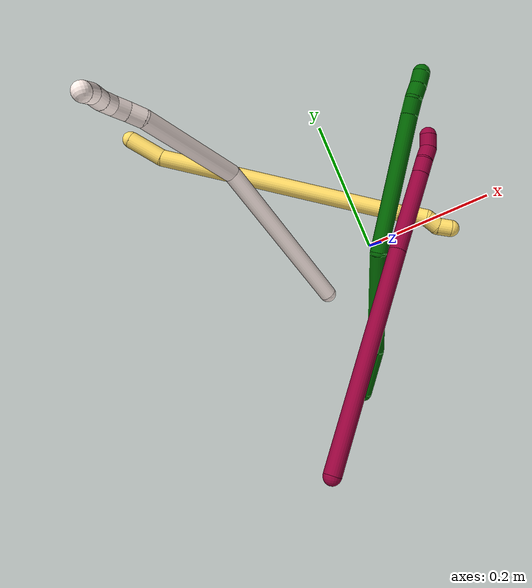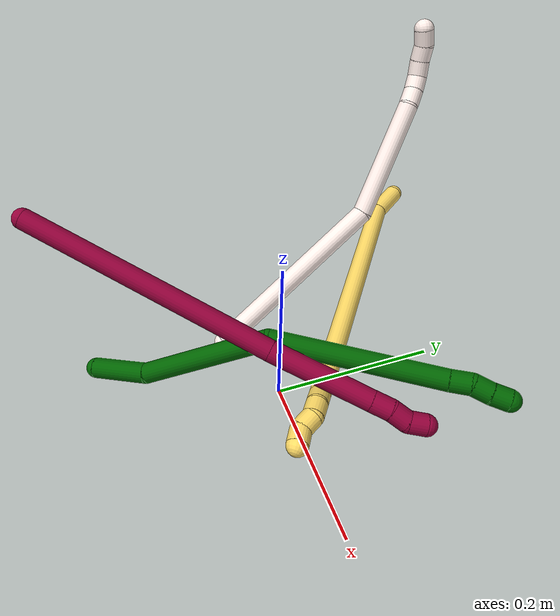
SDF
<sdf version="1.7">
 <world name="default">
  <model name="5">
   <static>0</static>
   <link name="5">
    <collision name="collision-cylinder-e_1_1_4">
     <pose>0.002869 -0.010849 -0.024515 2.72496 0.106606 0.494481</pose>
     <geometry><cylinder><radius>0.0125</radius><length>0.053923</length></cylinder></geometry>
     <surface>
      <friction><ode><mu>1.16</mu><mu2>1.16</mu2><slip1>0</slip1><slip2>0</slip2></ode></friction>
      <contact><ode><kp>1e+06</kp><kd>1</kd><max_vel>0</max_vel><min_depth>0.001</min_depth></ode></contact>
     </surface>
    </collision>
    <visual name="visual-cylinder-e_1_1_4">
     <pose>0.002869 -0.010849 -0.024515 2.72496 0.106606 0.494481</pose>
     <geometry><cylinder><radius>0.0125</radius><length>0.053923</length></cylinder></geometry>
     <material><ambient>1 0.858824 0.4 1</ambient></material>
    </visual>
    <collision name="collision-cylinder-e_2_4_5">
     <pose>0.056662 -0.052415 -0.207655 2.95032 0.305327 2.02656</pose>
     <geometry><cylinder><radius>0.0125</radius><length>0.338814</length></cylinder></geometry>
     <surface>
      <friction><ode><mu>1.16</mu><mu2>1.16</mu2><slip1>0</slip1><slip2>0</slip2></ode></friction>
      <contact><ode><kp>1e+06</kp><kd>1</kd><max_vel>0</max_vel><min_depth>0.001</min_depth></ode></contact>
     </surface>
    </collision>
    <visual name="visual-cylinder-e_2_4_5">
     <pose>0.056662 -0.052415 -0.207655 2.95032 0.305327 2.02656</pose>
     <geometry><cylinder><radius>0.0125</radius><length>0.338814</length></cylinder></geometry>
     <material><ambient>1 0.858824 0.4 1</ambient></material>
    </visual>
    <collision name="collision-cylinder-e_3_5_6">
     <pose>0.113026 -0.086554 -0.377746 2.8515 0.426626 1.95496</pose>
     <geometry><cylinder><radius>0.0125</radius><length>0.026288</length></cylinder></geometry>
     <surface>
      <friction><ode><mu>1.16</mu><mu2>1.16</mu2><slip1>0</slip1><slip2>0</slip2></ode></friction>
      <contact><ode><kp>1e+06</kp><kd>1</kd><max_vel>0</max_vel><min_depth>0.001</min_depth></ode></contact>
     </surface>
    </collision>
    <visual name="visual-cylinder-e_3_5_6">
     <pose>0.113026 -0.086554 -0.377746 2.8515 0.426626 1.95496</pose>
     <geometry><cylinder><radius>0.0125</radius><length>0.026288</length></cylinder></geometry>
     <material><ambient>1 0.858824 0.4 1</ambient></material>
    </visual>
    <collision name="collision-cylinder-e_4_6_7">
     <pose>0.124408 -0.093535 -0.396741 2.70015 0.619848 1.91928</pose>
     <geometry><cylinder><radius>0.0125</radius><length>0.020462</length></cylinder></geometry>
     <surface>
      <friction><ode><mu>1.16</mu><mu2>1.16</mu2><slip1>0</slip1><slip2>0</slip2></ode></friction>
      <contact><ode><kp>1e+06</kp><kd>1</kd><max_vel>0</max_vel><min_depth>0.001</min_depth></ode></contact>
     </surface>
    </collision>
    <visual name="visual-cylinder-e_4_6_7">
     <pose>0.124408 -0.093535 -0.396741 2.70015 0.619848 1.91928</pose>
     <geometry><cylinder><radius>0.0125</radius><length>0.020462</length></cylinder></geometry>
     <material><ambient>1 0.858824 0.4 1</ambient></material>
    </visual>
    <collision name="collision-cylinder-e_5_7_8">
     <pose>0.134377 -0.099634 -0.413257 2.86594 0.407003 1.95799</pose>
     <geometry><cylinder><radius>0.0125</radius><length>0.020339</length></cylinder></geometry>
     <surface>
      <friction><ode><mu>1.16</mu><mu2>1.16</mu2><slip1>0</slip1><slip2>0</slip2></ode></friction>
      <contact><ode><kp>1e+06</kp><kd>1</kd><max_vel>0</max_vel><min_depth>0.001</min_depth></ode></contact>
     </surface>
    </collision>
    <visual name="visual-cylinder-e_5_7_8">
     <pose>0.134377 -0.099634 -0.413257 2.86594 0.407003 1.95799</pose>
     <geometry><cylinder><radius>0.0125</radius><length>0.020339</length></cylinder></geometry>
     <material><ambient>1 0.858824 0.4 1</ambient></material>
    </visual>
    <collision name="collision-cylinder-e_6_8_9">
     <pose>0.13779 -0.10652 -0.431319 2.69524 -0.060816 -0.266459</pose>
     <geometry><cylinder><radius>0.0125</radius><length>0.02016</length></cylinder></geometry>
     <surface>
      <friction><ode><mu>1.16</mu><mu2>1.16</mu2><slip1>0</slip1><slip2>0</slip2></ode></friction>
      <contact><ode><kp>1e+06</kp><kd>1</kd><max_vel>0</max_vel><min_depth>0.001</min_depth></ode></contact>
     </surface>
    </collision>
    <visual name="visual-cylinder-e_6_8_9">
     <pose>0.13779 -0.10652 -0.431319 2.69524 -0.060816 -0.266459</pose>
     <geometry><cylinder><radius>0.0125</radius><length>0.02016</length></cylinder></geometry>
     <material><ambient>1 0.858824 0.4 1</ambient></material>
    </visual>
    <collision name="collision-cylinder-e_7_9_2">
     <pose>0.140411 -0.111891 -0.449809 3.03279 0.329066 2.50773</pose>
     <geometry><cylinder><radius>0.0125</radius><length>0.020014</length></cylinder></geometry>
     <surface>
      <friction><ode><mu>1.16</mu><mu2>1.16</mu2><slip1>0</slip1><slip2>0</slip2></ode></friction>
      <contact><ode><kp>1e+06</kp><kd>1</kd><max_vel>0</max_vel><min_depth>0.001</min_depth></ode></contact>
     </surface>
    </collision>
    <visual name="visual-cylinder-e_7_9_2">
     <pose>0.140411 -0.111891 -0.449809 3.03279 0.329066 2.50773</pose>
     <geometry><cylinder><radius>0.0125</radius><length>0.020014</length></cylinder></geometry>
     <material><ambient>1 0.858824 0.4 1</ambient></material>
    </visual>
    <collision name="collision-sphere-2">
     <pose>0.143645 -0.11292 -0.459223 0 -0 0</pose>
     <geometry><sphere><radius>0.0125</radius></sphere></geometry>
     <surface>
      <friction><ode><mu>1.16</mu><mu2>1.16</mu2><slip1>0</slip1><slip2>0</slip2></ode></friction>
      <contact><ode><kp>1e+06</kp><kd>1</kd><max_vel>0</max_vel><min_depth>0.001</min_depth></ode></contact>
     </surface>
    </collision>
    <visual name="visual-sphere-2">
     <pose>0.143645 -0.11292 -0.459223 0 -0 0</pose>
     <geometry><sphere><radius>0.0125</radius></sphere></geometry>
     <material><ambient>1 0.858824 0.4 1</ambient></material>
    </visual>
    <collision name="collision-sphere-9">
     <pose>0.137177 -0.110863 -0.440394 0 -0 0</pose>
     <geometry><sphere><radius>0.0125</radius></sphere></geometry>
     <surface>
      <friction><ode><mu>1.16</mu><mu2>1.16</mu2><slip1>0</slip1><slip2>0</slip2></ode></friction>
      <contact><ode><kp>1e+06</kp><kd>1</kd><max_vel>0</max_vel><min_depth>0.001</min_depth></ode></contact>
     </surface>
    </collision>
    <visual name="visual-sphere-9">
     <pose>0.137177 -0.110863 -0.440394 0 -0 0</pose>
     <geometry><sphere><radius>0.0125</radius></sphere></geometry>
     <material><ambient>1 0.858824 0.4 1</ambient></material>
    </visual>
    <collision name="collision-sphere-4">
     <pose>0.005738 -0.021698 -0.04903 0 -0 0</pose>
     <geometry><sphere><radius>0.0125</radius></sphere></geometry>
     <surface>
      <friction><ode><mu>1.16</mu><mu2>1.16</mu2><slip1>0</slip1><slip2>0</slip2></ode></friction>
      <contact><ode><kp>1e+06</kp><kd>1</kd><max_vel>0</max_vel><min_depth>0.001</min_depth></ode></contact>
     </surface>
    </collision>
    <visual name="visual-sphere-4">
     <pose>0.005738 -0.021698 -0.04903 0 -0 0</pose>
     <geometry><sphere><radius>0.0125</radius></sphere></geometry>
     <material><ambient>1 0.858824 0.4 1</ambient></material>
    </visual>
    <collision name="collision-sphere-1">
     <geometry><sphere><radius>0.0125</radius></sphere></geometry>
     <surface>
      <friction><ode><mu>1.16</mu><mu2>1.16</mu2><slip1>0</slip1><slip2>0</slip2></ode></friction>
      <contact><ode><kp>1e+06</kp><kd>1</kd><max_vel>0</max_vel><min_depth>0.001</min_depth></ode></contact>
     </surface>
    </collision>
    <visual name="visual-sphere-1">
     <geometry><sphere><radius>0.0125</radius></sphere></geometry>
     <material><ambient>1 0.858824 0.4 1</ambient></material>
    </visual>
    <collision name="collision-sphere-8">
     <pose>0.138403 -0.102176 -0.422243 0 -0 0</pose>
     <geometry><sphere><radius>0.0125</radius></sphere></geometry>
     <surface>
      <friction><ode><mu>1.16</mu><mu2>1.16</mu2><slip1>0</slip1><slip2>0</slip2></ode></friction>
      <contact><ode><kp>1e+06</kp><kd>1</kd><max_vel>0</max_vel><min_depth>0.001</min_depth></ode></contact>
     </surface>
    </collision>
    <visual name="visual-sphere-8">
     <pose>0.138403 -0.102176 -0.422243 0 -0 0</pose>
     <geometry><sphere><radius>0.0125</radius></sphere></geometry>
     <material><ambient>1 0.858824 0.4 1</ambient></material>
    </visual>
    <collision name="collision-sphere-5">
     <pose>0.107587 -0.083131 -0.36628 0 -0 0</pose>
     <geometry><sphere><radius>0.0125</radius></sphere></geometry>
     <surface>
      <friction><ode><mu>1.16</mu><mu2>1.16</mu2><slip1>0</slip1><slip2>0</slip2></ode></friction>
      <contact><ode><kp>1e+06</kp><kd>1</kd><max_vel>0</max_vel><min_depth>0.001</min_depth></ode></contact>
     </surface>
    </collision>
    <visual name="visual-sphere-5">
     <pose>0.107587 -0.083131 -0.36628 0 -0 0</pose>
     <geometry><sphere><radius>0.0125</radius></sphere></geometry>
     <material><ambient>1 0.858824 0.4 1</ambient></material>
    </visual>
    <collision name="collision-sphere-6">
     <pose>0.118465 -0.089977 -0.389212 0 -0 0</pose>
     <geometry><sphere><radius>0.0125</radius></sphere></geometry>
     <surface>
      <friction><ode><mu>1.16</mu><mu2>1.16</mu2><slip1>0</slip1><slip2>0</slip2></ode></friction>
      <contact><ode><kp>1e+06</kp><kd>1</kd><max_vel>0</max_vel><min_depth>0.001</min_depth></ode></contact>
     </surface>
    </collision>
    <visual name="visual-sphere-6">
     <pose>0.118465 -0.089977 -0.389212 0 -0 0</pose>
     <geometry><sphere><radius>0.0125</radius></sphere></geometry>
     <material><ambient>1 0.858824 0.4 1</ambient></material>
    </visual>
    <collision name="collision-sphere-7">
     <pose>0.130351 -0.097093 -0.404271 0 -0 0</pose>
     <geometry><sphere><radius>0.0125</radius></sphere></geometry>
     <surface>
      <friction><ode><mu>1.16</mu><mu2>1.16</mu2><slip1>0</slip1><slip2>0</slip2></ode></friction>
      <contact><ode><kp>1e+06</kp><kd>1</kd><max_vel>0</max_vel><min_depth>0.001</min_depth></ode></contact>
     </surface>
    </collision>
    <visual name="visual-sphere-7">
     <pose>0.130351 -0.097093 -0.404271 0 -0 0</pose>
     <geometry><sphere><radius>0.0125</radius></sphere></geometry>
     <material><ambient>1 0.858824 0.4 1</ambient></material>
    </visual>
    <inertial>
     <pose>0.066381 -0.057893 -0.23166 0 -0 0</pose>
     <mass>0.5</mass>
     <inertia>
      <ixx>0.001456</ixx>
      <ixy>0</ixy>
      <ixz>0</ixz>
      <iyy>0.004354</iyy>
      <iyz>0</iyz>
      <izz>-0.00042</izz>
     </inertia>
    </inertial>
   </link>
   <pose>-0.269453 0.286688 0.044842 -1.03943 -0.832587 0.483089</pose>
  </model>
  <model name="6">
   <static>0</static>
   <link name="6">
    <collision name="collision-cylinder-e_1_1_4">
     <pose>0.018389 0.029002 0.010092 -1.23593 0.539581 -0.388193</pose>
     <geometry><cylinder><radius>0.0125</radius><length>0.071585</length></cylinder></geometry>
     <surface>
      <friction><ode><mu>1.16</mu><mu2>1.16</mu2><slip1>0</slip1><slip2>0</slip2></ode></friction>
      <contact><ode><kp>1e+06</kp><kd>1</kd><max_vel>0</max_vel><min_depth>0.001</min_depth></ode></contact>
     </surface>
    </collision>
    <visual name="visual-cylinder-e_1_1_4">
     <pose>0.018389 0.029002 0.010092 -1.23593 0.539581 -0.388193</pose>
     <geometry><cylinder><radius>0.0125</radius><length>0.071585</length></cylinder></geometry>
     <material><ambient>0 0.392157 0.003922 1</ambient></material>
    </visual>
    <collision name="collision-cylinder-e_2_4_5">
     <pose>0.054047 0.134157 0.043635 -1.27206 0.213412 -0.157853</pose>
     <geometry><cylinder><radius>0.0125</radius><length>0.163064</length></cylinder></geometry>
     <surface>
      <friction><ode><mu>1.16</mu><mu2>1.16</mu2><slip1>0</slip1><slip2>0</slip2></ode></friction>
      <contact><ode><kp>1e+06</kp><kd>1</kd><max_vel>0</max_vel><min_depth>0.001</min_depth></ode></contact>
     </surface>
    </collision>
    <visual name="visual-cylinder-e_2_4_5">
     <pose>0.054047 0.134157 0.043635 -1.27206 0.213412 -0.157853</pose>
     <geometry><cylinder><radius>0.0125</radius><length>0.163064</length></cylinder></geometry>
     <material><ambient>0 0.392157 0.003922 1</ambient></material>
    </visual>
    <collision name="collision-cylinder-e_3_5_6">
     <pose>0.134807 0.287483 0.075548 -1.4616 0.685508 -0.619145</pose>
     <geometry><cylinder><radius>0.0125</radius><length>0.200583</length></cylinder></geometry>
     <surface>
      <friction><ode><mu>1.16</mu><mu2>1.16</mu2><slip1>0</slip1><slip2>0</slip2></ode></friction>
      <contact><ode><kp>1e+06</kp><kd>1</kd><max_vel>0</max_vel><min_depth>0.001</min_depth></ode></contact>
     </surface>
    </collision>
    <visual name="visual-cylinder-e_3_5_6">
     <pose>0.134807 0.287483 0.075548 -1.4616 0.685508 -0.619145</pose>
     <geometry><cylinder><radius>0.0125</radius><length>0.200583</length></cylinder></geometry>
     <material><ambient>0 0.392157 0.003922 1</ambient></material>
    </visual>
    <collision name="collision-cylinder-e_4_6_7">
     <pose>0.205214 0.374075 0.086124 -1.34986 0.621671 -0.503298</pose>
     <geometry><cylinder><radius>0.0125</radius><length>0.02375</length></cylinder></geometry>
     <surface>
      <friction><ode><mu>1.16</mu><mu2>1.16</mu2><slip1>0</slip1><slip2>0</slip2></ode></friction>
      <contact><ode><kp>1e+06</kp><kd>1</kd><max_vel>0</max_vel><min_depth>0.001</min_depth></ode></contact>
     </surface>
    </collision>
    <visual name="visual-cylinder-e_4_6_7">
     <pose>0.205214 0.374075 0.086124 -1.34986 0.621671 -0.503298</pose>
     <geometry><cylinder><radius>0.0125</radius><length>0.02375</length></cylinder></geometry>
     <material><ambient>0 0.392157 0.003922 1</ambient></material>
    </visual>
    <collision name="collision-cylinder-e_5_7_8">
     <pose>0.220555 0.389705 0.088068 -1.59827 0.935306 -0.957602</pose>
     <geometry><cylinder><radius>0.0125</radius><length>0.020937</length></cylinder></geometry>
     <surface>
      <friction><ode><mu>1.16</mu><mu2>1.16</mu2><slip1>0</slip1><slip2>0</slip2></ode></friction>
      <contact><ode><kp>1e+06</kp><kd>1</kd><max_vel>0</max_vel><min_depth>0.001</min_depth></ode></contact>
     </surface>
    </collision>
    <visual name="visual-cylinder-e_5_7_8">
     <pose>0.220555 0.389705 0.088068 -1.59827 0.935306 -0.957602</pose>
     <geometry><cylinder><radius>0.0125</radius><length>0.020937</length></cylinder></geometry>
     <material><ambient>0 0.392157 0.003922 1</ambient></material>
    </visual>
    <collision name="collision-cylinder-e_6_8_2">
     <pose>0.236308 0.402778 0.087773 -1.58891 0.818248 -0.831555</pose>
     <geometry><cylinder><radius>0.0125</radius><length>0.020079</length></cylinder></geometry>
     <surface>
      <friction><ode><mu>1.16</mu><mu2>1.16</mu2><slip1>0</slip1><slip2>0</slip2></ode></friction>
      <contact><ode><kp>1e+06</kp><kd>1</kd><max_vel>0</max_vel><min_depth>0.001</min_depth></ode></contact>
     </surface>
    </collision>
    <visual name="visual-cylinder-e_6_8_2">
     <pose>0.236308 0.402778 0.087773 -1.58891 0.818248 -0.831555</pose>
     <geometry><cylinder><radius>0.0125</radius><length>0.020079</length></cylinder></geometry>
     <material><ambient>0 0.392157 0.003922 1</ambient></material>
    </visual>
    <collision name="collision-sphere-2">
     <pose>0.243637 0.409639 0.087649 0 -0 0</pose>
     <geometry><sphere><radius>0.0125</radius></sphere></geometry>
     <surface>
      <friction><ode><mu>1.16</mu><mu2>1.16</mu2><slip1>0</slip1><slip2>0</slip2></ode></friction>
      <contact><ode><kp>1e+06</kp><kd>1</kd><max_vel>0</max_vel><min_depth>0.001</min_depth></ode></contact>
     </surface>
    </collision>
    <visual name="visual-sphere-2">
     <pose>0.243637 0.409639 0.087649 0 -0 0</pose>
     <geometry><sphere><radius>0.0125</radius></sphere></geometry>
     <material><ambient>0 0.392157 0.003922 1</ambient></material>
    </visual>
    <collision name="collision-sphere-4">
     <pose>0.036779 0.058004 0.020183 0 -0 0</pose>
     <geometry><sphere><radius>0.0125</radius></sphere></geometry>
     <surface>
      <friction><ode><mu>1.16</mu><mu2>1.16</mu2><slip1>0</slip1><slip2>0</slip2></ode></friction>
      <contact><ode><kp>1e+06</kp><kd>1</kd><max_vel>0</max_vel><min_depth>0.001</min_depth></ode></contact>
     </surface>
    </collision>
    <visual name="visual-sphere-4">
     <pose>0.036779 0.058004 0.020183 0 -0 0</pose>
     <geometry><sphere><radius>0.0125</radius></sphere></geometry>
     <material><ambient>0 0.392157 0.003922 1</ambient></material>
    </visual>
    <collision name="collision-sphere-1">
     <geometry><sphere><radius>0.0125</radius></sphere></geometry>
     <surface>
      <friction><ode><mu>1.16</mu><mu2>1.16</mu2><slip1>0</slip1><slip2>0</slip2></ode></friction>
      <contact><ode><kp>1e+06</kp><kd>1</kd><max_vel>0</max_vel><min_depth>0.001</min_depth></ode></contact>
     </surface>
    </collision>
    <visual name="visual-sphere-1">
     <geometry><sphere><radius>0.0125</radius></sphere></geometry>
     <material><ambient>0 0.392157 0.003922 1</ambient></material>
    </visual>
    <collision name="collision-sphere-8">
     <pose>0.22898 0.395917 0.087898 0 -0 0</pose>
     <geometry><sphere><radius>0.0125</radius></sphere></geometry>
     <surface>
      <friction><ode><mu>1.16</mu><mu2>1.16</mu2><slip1>0</slip1><slip2>0</slip2></ode></friction>
      <contact><ode><kp>1e+06</kp><kd>1</kd><max_vel>0</max_vel><min_depth>0.001</min_depth></ode></contact>
     </surface>
    </collision>
    <visual name="visual-sphere-8">
     <pose>0.22898 0.395917 0.087898 0 -0 0</pose>
     <geometry><sphere><radius>0.0125</radius></sphere></geometry>
     <material><ambient>0 0.392157 0.003922 1</ambient></material>
    </visual>
    <collision name="collision-sphere-5">
     <pose>0.071315 0.21031 0.067087 0 -0 0</pose>
     <geometry><sphere><radius>0.0125</radius></sphere></geometry>
     <surface>
      <friction><ode><mu>1.16</mu><mu2>1.16</mu2><slip1>0</slip1><slip2>0</slip2></ode></friction>
      <contact><ode><kp>1e+06</kp><kd>1</kd><max_vel>0</max_vel><min_depth>0.001</min_depth></ode></contact>
     </surface>
    </collision>
    <visual name="visual-sphere-5">
     <pose>0.071315 0.21031 0.067087 0 -0 0</pose>
     <geometry><sphere><radius>0.0125</radius></sphere></geometry>
     <material><ambient>0 0.392157 0.003922 1</ambient></material>
    </visual>
    <collision name="collision-sphere-6">
     <pose>0.198298 0.364656 0.084008 0 -0 0</pose>
     <geometry><sphere><radius>0.0125</radius></sphere></geometry>
     <surface>
      <friction><ode><mu>1.16</mu><mu2>1.16</mu2><slip1>0</slip1><slip2>0</slip2></ode></friction>
      <contact><ode><kp>1e+06</kp><kd>1</kd><max_vel>0</max_vel><min_depth>0.001</min_depth></ode></contact>
     </surface>
    </collision>
    <visual name="visual-sphere-6">
     <pose>0.198298 0.364656 0.084008 0 -0 0</pose>
     <geometry><sphere><radius>0.0125</radius></sphere></geometry>
     <material><ambient>0 0.392157 0.003922 1</ambient></material>
    </visual>
    <collision name="collision-sphere-7">
     <pose>0.21213 0.383494 0.088239 0 -0 0</pose>
     <geometry><sphere><radius>0.0125</radius></sphere></geometry>
     <surface>
      <friction><ode><mu>1.16</mu><mu2>1.16</mu2><slip1>0</slip1><slip2>0</slip2></ode></friction>
      <contact><ode><kp>1e+06</kp><kd>1</kd><max_vel>0</max_vel><min_depth>0.001</min_depth></ode></contact>
     </surface>
    </collision>
    <visual name="visual-sphere-7">
     <pose>0.21213 0.383494 0.088239 0 -0 0</pose>
     <geometry><sphere><radius>0.0125</radius></sphere></geometry>
     <material><ambient>0 0.392157 0.003922 1</ambient></material>
    </visual>
    <inertial>
     <pose>0.102812 0.213496 0.057286 0 -0 0</pose>
     <mass>0.5</mass>
     <inertia>
      <ixx>0.000457</ixx>
      <ixy>0</ixy>
      <ixz>0</ixz>
      <iyy>0.000103</iyy>
      <iyz>0</iyz>
      <izz>-0.00142</izz>
     </inertia>
    </inertial>
   </link>
   <pose>-0.09909 -0.205276 0.012161 0.41082 0.545298 0.210416</pose>
  </model>
  <model name="8">
   <static>0</static>
   <link name="8">
    <collision name="collision-cylinder-e_1_1_4">
     <pose>0.029029 0.008881 -0.154517 -3.08418 0.185406 -2.5425</pose>
     <geometry><cylinder><radius>0.0125</radius><length>0.314942</length></cylinder></geometry>
     <surface>
      <friction><ode><mu>1.16</mu><mu2>1.16</mu2><slip1>0</slip1><slip2>0</slip2></ode></friction>
      <contact><ode><kp>1e+06</kp><kd>1</kd><max_vel>0</max_vel><min_depth>0.001</min_depth></ode></contact>
     </surface>
    </collision>
    <visual name="visual-cylinder-e_1_1_4">
     <pose>0.029029 0.008881 -0.154517 -3.08418 0.185406 -2.5425</pose>
     <geometry><cylinder><radius>0.0125</radius><length>0.314942</length></cylinder></geometry>
     <material><ambient>0.584314 0 0.227451 1</ambient></material>
    </visual>
    <collision name="collision-cylinder-e_2_4_5">
     <pose>0.066509 0.022629 -0.368634 -3.0601 0.140392 -2.09067</pose>
     <geometry><cylinder><radius>0.0125</radius><length>0.120783</length></cylinder></geometry>
     <surface>
      <friction><ode><mu>1.16</mu><mu2>1.16</mu2><slip1>0</slip1><slip2>0</slip2></ode></friction>
      <contact><ode><kp>1e+06</kp><kd>1</kd><max_vel>0</max_vel><min_depth>0.001</min_depth></ode></contact>
     </surface>
    </collision>
    <visual name="visual-cylinder-e_2_4_5">
     <pose>0.066509 0.022629 -0.368634 -3.0601 0.140392 -2.09067</pose>
     <geometry><cylinder><radius>0.0125</radius><length>0.120783</length></cylinder></geometry>
     <material><ambient>0.584314 0 0.227451 1</ambient></material>
    </visual>
    <collision name="collision-cylinder-e_3_5_6">
     <pose>0.07638 0.028419 -0.439506 -3.05994 0.124945 -1.98464</pose>
     <geometry><cylinder><radius>0.0125</radius><length>0.0228</length></cylinder></geometry>
     <surface>
      <friction><ode><mu>1.16</mu><mu2>1.16</mu2><slip1>0</slip1><slip2>0</slip2></ode></friction>
      <contact><ode><kp>1e+06</kp><kd>1</kd><max_vel>0</max_vel><min_depth>0.001</min_depth></ode></contact>
     </surface>
    </collision>
    <visual name="visual-cylinder-e_3_5_6">
     <pose>0.07638 0.028419 -0.439506 -3.05994 0.124945 -1.98464</pose>
     <geometry><cylinder><radius>0.0125</radius><length>0.0228</length></cylinder></geometry>
     <material><ambient>0.584314 0 0.227451 1</ambient></material>
    </visual>
    <collision name="collision-cylinder-e_4_6_7">
     <pose>0.081352 0.029666 -0.460713 -3.10894 0.34309 -2.95366</pose>
     <geometry><cylinder><radius>0.0125</radius><length>0.021109</length></cylinder></geometry>
     <surface>
      <friction><ode><mu>1.16</mu><mu2>1.16</mu2><slip1>0</slip1><slip2>0</slip2></ode></friction>
      <contact><ode><kp>1e+06</kp><kd>1</kd><max_vel>0</max_vel><min_depth>0.001</min_depth></ode></contact>
     </surface>
    </collision>
    <visual name="visual-cylinder-e_4_6_7">
     <pose>0.081352 0.029666 -0.460713 -3.10894 0.34309 -2.95366</pose>
     <geometry><cylinder><radius>0.0125</radius><length>0.021109</length></cylinder></geometry>
     <material><ambient>0.584314 0 0.227451 1</ambient></material>
    </visual>
    <collision name="collision-cylinder-e_5_7_2">
     <pose>0.084186 0.028556 -0.480703 2.99993 -0.070378 -0.92118</pose>
     <geometry><cylinder><radius>0.0125</radius><length>0.020366</length></cylinder></geometry>
     <surface>
      <friction><ode><mu>1.16</mu><mu2>1.16</mu2><slip1>0</slip1><slip2>0</slip2></ode></friction>
      <contact><ode><kp>1e+06</kp><kd>1</kd><max_vel>0</max_vel><min_depth>0.001</min_depth></ode></contact>
     </surface>
    </collision>
    <visual name="visual-cylinder-e_5_7_2">
     <pose>0.084186 0.028556 -0.480703 2.99993 -0.070378 -0.92118</pose>
     <geometry><cylinder><radius>0.0125</radius><length>0.020366</length></cylinder></geometry>
     <material><ambient>0.584314 0 0.227451 1</ambient></material>
    </visual>
    <collision name="collision-sphere-2">
     <pose>0.08347 0.027122 -0.490759 0 -0 0</pose>
     <geometry><sphere><radius>0.0125</radius></sphere></geometry>
     <surface>
      <friction><ode><mu>1.16</mu><mu2>1.16</mu2><slip1>0</slip1><slip2>0</slip2></ode></friction>
      <contact><ode><kp>1e+06</kp><kd>1</kd><max_vel>0</max_vel><min_depth>0.001</min_depth></ode></contact>
     </surface>
    </collision>
    <visual name="visual-sphere-2">
     <pose>0.08347 0.027122 -0.490759 0 -0 0</pose>
     <geometry><sphere><radius>0.0125</radius></sphere></geometry>
     <material><ambient>0.584314 0 0.227451 1</ambient></material>
    </visual>
    <collision name="collision-sphere-7">
     <pose>0.084902 0.029991 -0.470647 0 -0 0</pose>
     <geometry><sphere><radius>0.0125</radius></sphere></geometry>
     <surface>
      <friction><ode><mu>1.16</mu><mu2>1.16</mu2><slip1>0</slip1><slip2>0</slip2></ode></friction>
      <contact><ode><kp>1e+06</kp><kd>1</kd><max_vel>0</max_vel><min_depth>0.001</min_depth></ode></contact>
     </surface>
    </collision>
    <visual name="visual-sphere-7">
     <pose>0.084902 0.029991 -0.470647 0 -0 0</pose>
     <geometry><sphere><radius>0.0125</radius></sphere></geometry>
     <material><ambient>0.584314 0 0.227451 1</ambient></material>
    </visual>
    <collision name="collision-sphere-6">
     <pose>0.077801 0.029342 -0.450779 0 -0 0</pose>
     <geometry><sphere><radius>0.0125</radius></sphere></geometry>
     <surface>
      <friction><ode><mu>1.16</mu><mu2>1.16</mu2><slip1>0</slip1><slip2>0</slip2></ode></friction>
      <contact><ode><kp>1e+06</kp><kd>1</kd><max_vel>0</max_vel><min_depth>0.001</min_depth></ode></contact>
     </surface>
    </collision>
    <visual name="visual-sphere-6">
     <pose>0.077801 0.029342 -0.450779 0 -0 0</pose>
     <geometry><sphere><radius>0.0125</radius></sphere></geometry>
     <material><ambient>0.584314 0 0.227451 1</ambient></material>
    </visual>
    <collision name="collision-sphere-5">
     <pose>0.07496 0.027497 -0.428232 0 -0 0</pose>
     <geometry><sphere><radius>0.0125</radius></sphere></geometry>
     <surface>
      <friction><ode><mu>1.16</mu><mu2>1.16</mu2><slip1>0</slip1><slip2>0</slip2></ode></friction>
      <contact><ode><kp>1e+06</kp><kd>1</kd><max_vel>0</max_vel><min_depth>0.001</min_depth></ode></contact>
     </surface>
    </collision>
    <visual name="visual-sphere-5">
     <pose>0.07496 0.027497 -0.428232 0 -0 0</pose>
     <geometry><sphere><radius>0.0125</radius></sphere></geometry>
     <material><ambient>0.584314 0 0.227451 1</ambient></material>
    </visual>
    <collision name="collision-sphere-1">
     <geometry><sphere><radius>0.0125</radius></sphere></geometry>
     <surface>
      <friction><ode><mu>1.16</mu><mu2>1.16</mu2><slip1>0</slip1><slip2>0</slip2></ode></friction>
      <contact><ode><kp>1e+06</kp><kd>1</kd><max_vel>0</max_vel><min_depth>0.001</min_depth></ode></contact>
     </surface>
    </collision>
    <visual name="visual-sphere-1">
     <geometry><sphere><radius>0.0125</radius></sphere></geometry>
     <material><ambient>0.584314 0 0.227451 1</ambient></material>
    </visual>
    <collision name="collision-sphere-4">
     <pose>0.058058 0.017761 -0.309035 0 -0 0</pose>
     <geometry><sphere><radius>0.0125</radius></sphere></geometry>
     <surface>
      <friction><ode><mu>1.16</mu><mu2>1.16</mu2><slip1>0</slip1><slip2>0</slip2></ode></friction>
      <contact><ode><kp>1e+06</kp><kd>1</kd><max_vel>0</max_vel><min_depth>0.001</min_depth></ode></contact>
     </surface>
    </collision>
    <visual name="visual-sphere-4">
     <pose>0.058058 0.017761 -0.309035 0 -0 0</pose>
     <geometry><sphere><radius>0.0125</radius></sphere></geometry>
     <material><ambient>0.584314 0 0.227451 1</ambient></material>
    </visual>
    <inertial>
     <pose>0.044698 0.014772 -0.245449 0 -0 0</pose>
     <mass>0.5</mass>
     <inertia>
      <ixx>-0.003775</ixx>
      <ixy>0</ixy>
      <ixz>0</ixz>
      <iyy>0.000669</iyy>
      <iyz>0</iyz>
      <izz>-0.000702</izz>
     </inertia>
    </inertial>
   </link>
   <pose>-0.173675 -0.247761 0.202673 1.22178 1.08821 -0.892528</pose>
  </model>
  <model name="11">
   <static>0</static>
   <link name="11">
    <collision name="collision-cylinder-e_1_1_4">
     <pose>0.001226 0.078164 0.094871 -0.689145 0.009969 -0.003578</pose>
     <geometry><cylinder><radius>0.0125</radius><length>0.245859</length></cylinder></geometry>
     <surface>
      <friction><ode><mu>1.16</mu><mu2>1.16</mu2><slip1>0</slip1><slip2>0</slip2></ode></friction>
      <contact><ode><kp>1e+06</kp><kd>1</kd><max_vel>0</max_vel><min_depth>0.001</min_depth></ode></contact>
     </surface>
    </collision>
    <visual name="visual-cylinder-e_1_1_4">
     <pose>0.001226 0.078164 0.094871 -0.689145 0.009969 -0.003578</pose>
     <geometry><cylinder><radius>0.0125</radius><length>0.245859</length></cylinder></geometry>
     <material><ambient>1 0.933333 0.909804 1</ambient></material>
    </visual>
    <collision name="collision-cylinder-e_2_4_5">
     <pose>0.011529 0.223732 0.223374 -1.10797 0.119928 -0.074243</pose>
     <geometry><cylinder><radius>0.0125</radius><length>0.151747</length></cylinder></geometry>
     <surface>
      <friction><ode><mu>1.16</mu><mu2>1.16</mu2><slip1>0</slip1><slip2>0</slip2></ode></friction>
      <contact><ode><kp>1e+06</kp><kd>1</kd><max_vel>0</max_vel><min_depth>0.001</min_depth></ode></contact>
     </surface>
    </collision>
    <visual name="visual-cylinder-e_2_4_5">
     <pose>0.011529 0.223732 0.223374 -1.10797 0.119928 -0.074243</pose>
     <geometry><cylinder><radius>0.0125</radius><length>0.151747</length></cylinder></geometry>
     <material><ambient>1 0.933333 0.909804 1</ambient></material>
    </visual>
    <collision name="collision-cylinder-e_3_5_6">
     <pose>0.024431 0.299709 0.262218 -1.02462 0.364165 -0.206364</pose>
     <geometry><cylinder><radius>0.0125</radius><length>0.021476</length></cylinder></geometry>
     <surface>
      <friction><ode><mu>1.16</mu><mu2>1.16</mu2><slip1>0</slip1><slip2>0</slip2></ode></friction>
      <contact><ode><kp>1e+06</kp><kd>1</kd><max_vel>0</max_vel><min_depth>0.001</min_depth></ode></contact>
     </surface>
    </collision>
    <visual name="visual-cylinder-e_3_5_6">
     <pose>0.024431 0.299709 0.262218 -1.02462 0.364165 -0.206364</pose>
     <geometry><cylinder><radius>0.0125</radius><length>0.021476</length></cylinder></geometry>
     <material><ambient>1 0.933333 0.909804 1</ambient></material>
    </visual>
    <collision name="collision-cylinder-e_4_6_7">
     <pose>0.031057 0.317178 0.271107 -1.17877 0.283263 -0.190111</pose>
     <geometry><cylinder><radius>0.0125</radius><length>0.020047</length></cylinder></geometry>
     <surface>
      <friction><ode><mu>1.16</mu><mu2>1.16</mu2><slip1>0</slip1><slip2>0</slip2></ode></friction>
      <contact><ode><kp>1e+06</kp><kd>1</kd><max_vel>0</max_vel><min_depth>0.001</min_depth></ode></contact>
     </surface>
    </collision>
    <visual name="visual-cylinder-e_4_6_7">
     <pose>0.031057 0.317178 0.271107 -1.17877 0.283263 -0.190111</pose>
     <geometry><cylinder><radius>0.0125</radius><length>0.020047</length></cylinder></geometry>
     <material><ambient>1 0.933333 0.909804 1</ambient></material>
    </visual>
    <collision name="collision-cylinder-e_5_7_8">
     <pose>0.033035 0.33642 0.275325 -1.51859 -0.079327 0.075294</pose>
     <geometry><cylinder><radius>0.0125</radius><length>0.020791</length></cylinder></geometry>
     <surface>
      <friction><ode><mu>1.16</mu><mu2>1.16</mu2><slip1>0</slip1><slip2>0</slip2></ode></friction>
      <contact><ode><kp>1e+06</kp><kd>1</kd><max_vel>0</max_vel><min_depth>0.001</min_depth></ode></contact>
     </surface>
    </collision>
    <visual name="visual-cylinder-e_5_7_8">
     <pose>0.033035 0.33642 0.275325 -1.51859 -0.079327 0.075294</pose>
     <geometry><cylinder><radius>0.0125</radius><length>0.020791</length></cylinder></geometry>
     <material><ambient>1 0.933333 0.909804 1</ambient></material>
    </visual>
    <collision name="collision-cylinder-e_6_8_9">
     <pose>0.029761 0.356449 0.276541 -1.50112 -0.247301 0.230797</pose>
     <geometry><cylinder><radius>0.0125</radius><length>0.020017</length></cylinder></geometry>
     <surface>
      <friction><ode><mu>1.16</mu><mu2>1.16</mu2><slip1>0</slip1><slip2>0</slip2></ode></friction>
      <contact><ode><kp>1e+06</kp><kd>1</kd><max_vel>0</max_vel><min_depth>0.001</min_depth></ode></contact>
     </surface>
    </collision>
    <visual name="visual-cylinder-e_6_8_9">
     <pose>0.029761 0.356449 0.276541 -1.50112 -0.247301 0.230797</pose>
     <geometry><cylinder><radius>0.0125</radius><length>0.020017</length></cylinder></geometry>
     <material><ambient>1 0.933333 0.909804 1</ambient></material>
    </visual>
    <collision name="collision-cylinder-e_7_9_2">
     <pose>0.025622 0.375796 0.275133 -1.78305 -0.16915 0.209218</pose>
     <geometry><cylinder><radius>0.0125</radius><length>0.020064</length></cylinder></geometry>
     <surface>
      <friction><ode><mu>1.16</mu><mu2>1.16</mu2><slip1>0</slip1><slip2>0</slip2></ode></friction>
      <contact><ode><kp>1e+06</kp><kd>1</kd><max_vel>0</max_vel><min_depth>0.001</min_depth></ode></contact>
     </surface>
    </collision>
    <visual name="visual-cylinder-e_7_9_2">
     <pose>0.025622 0.375796 0.275133 -1.78305 -0.16915 0.209218</pose>
     <geometry><cylinder><radius>0.0125</radius><length>0.020064</length></cylinder></geometry>
     <material><ambient>1 0.933333 0.909804 1</ambient></material>
    </visual>
    <collision name="collision-sphere-2">
     <pose>0.023933 0.385463 0.27305 0 -0 0</pose>
     <geometry><sphere><radius>0.0125</radius></sphere></geometry>
     <surface>
      <friction><ode><mu>1.16</mu><mu2>1.16</mu2><slip1>0</slip1><slip2>0</slip2></ode></friction>
      <contact><ode><kp>1e+06</kp><kd>1</kd><max_vel>0</max_vel><min_depth>0.001</min_depth></ode></contact>
     </surface>
    </collision>
    <visual name="visual-sphere-2">
     <pose>0.023933 0.385463 0.27305 0 -0 0</pose>
     <geometry><sphere><radius>0.0125</radius></sphere></geometry>
     <material><ambient>1 0.933333 0.909804 1</ambient></material>
    </visual>
    <collision name="collision-sphere-9">
     <pose>0.027311 0.36613 0.277217 0 -0 0</pose>
     <geometry><sphere><radius>0.0125</radius></sphere></geometry>
     <surface>
      <friction><ode><mu>1.16</mu><mu2>1.16</mu2><slip1>0</slip1><slip2>0</slip2></ode></friction>
      <contact><ode><kp>1e+06</kp><kd>1</kd><max_vel>0</max_vel><min_depth>0.001</min_depth></ode></contact>
     </surface>
    </collision>
    <visual name="visual-sphere-9">
     <pose>0.027311 0.36613 0.277217 0 -0 0</pose>
     <geometry><sphere><radius>0.0125</radius></sphere></geometry>
     <material><ambient>1 0.933333 0.909804 1</ambient></material>
    </visual>
    <collision name="collision-sphere-4">
     <pose>0.002451 0.156328 0.189742 0 -0 0</pose>
     <geometry><sphere><radius>0.0125</radius></sphere></geometry>
     <surface>
      <friction><ode><mu>1.16</mu><mu2>1.16</mu2><slip1>0</slip1><slip2>0</slip2></ode></friction>
      <contact><ode><kp>1e+06</kp><kd>1</kd><max_vel>0</max_vel><min_depth>0.001</min_depth></ode></contact>
     </surface>
    </collision>
    <visual name="visual-sphere-4">
     <pose>0.002451 0.156328 0.189742 0 -0 0</pose>
     <geometry><sphere><radius>0.0125</radius></sphere></geometry>
     <material><ambient>1 0.933333 0.909804 1</ambient></material>
    </visual>
    <collision name="collision-sphere-1">
     <geometry><sphere><radius>0.0125</radius></sphere></geometry>
     <surface>
      <friction><ode><mu>1.16</mu><mu2>1.16</mu2><slip1>0</slip1><slip2>0</slip2></ode></friction>
      <contact><ode><kp>1e+06</kp><kd>1</kd><max_vel>0</max_vel><min_depth>0.001</min_depth></ode></contact>
     </surface>
    </collision>
    <visual name="visual-sphere-1">
     <geometry><sphere><radius>0.0125</radius></sphere></geometry>
     <material><ambient>1 0.933333 0.909804 1</ambient></material>
    </visual>
    <collision name="collision-sphere-8">
     <pose>0.032211 0.346769 0.275865 0 -0 0</pose>
     <geometry><sphere><radius>0.0125</radius></sphere></geometry>
     <surface>
      <friction><ode><mu>1.16</mu><mu2>1.16</mu2><slip1>0</slip1><slip2>0</slip2></ode></friction>
      <contact><ode><kp>1e+06</kp><kd>1</kd><max_vel>0</max_vel><min_depth>0.001</min_depth></ode></contact>
     </surface>
    </collision>
    <visual name="visual-sphere-8">
     <pose>0.032211 0.346769 0.275865 0 -0 0</pose>
     <geometry><sphere><radius>0.0125</radius></sphere></geometry>
     <material><ambient>1 0.933333 0.909804 1</ambient></material>
    </visual>
    <collision name="collision-sphere-5">
     <pose>0.020606 0.291135 0.257006 0 -0 0</pose>
     <geometry><sphere><radius>0.0125</radius></sphere></geometry>
     <surface>
      <friction><ode><mu>1.16</mu><mu2>1.16</mu2><slip1>0</slip1><slip2>0</slip2></ode></friction>
      <contact><ode><kp>1e+06</kp><kd>1</kd><max_vel>0</max_vel><min_depth>0.001</min_depth></ode></contact>
     </surface>
    </collision>
    <visual name="visual-sphere-5">
     <pose>0.020606 0.291135 0.257006 0 -0 0</pose>
     <geometry><sphere><radius>0.0125</radius></sphere></geometry>
     <material><ambient>1 0.933333 0.909804 1</ambient></material>
    </visual>
    <collision name="collision-sphere-6">
     <pose>0.028255 0.308284 0.26743 0 -0 0</pose>
     <geometry><sphere><radius>0.0125</radius></sphere></geometry>
     <surface>
      <friction><ode><mu>1.16</mu><mu2>1.16</mu2><slip1>0</slip1><slip2>0</slip2></ode></friction>
      <contact><ode><kp>1e+06</kp><kd>1</kd><max_vel>0</max_vel><min_depth>0.001</min_depth></ode></contact>
     </surface>
    </collision>
    <visual name="visual-sphere-6">
     <pose>0.028255 0.308284 0.26743 0 -0 0</pose>
     <geometry><sphere><radius>0.0125</radius></sphere></geometry>
     <material><ambient>1 0.933333 0.909804 1</ambient></material>
    </visual>
    <collision name="collision-sphere-7">
     <pose>0.033858 0.326072 0.274784 0 -0 0</pose>
     <geometry><sphere><radius>0.0125</radius></sphere></geometry>
     <surface>
      <friction><ode><mu>1.16</mu><mu2>1.16</mu2><slip1>0</slip1><slip2>0</slip2></ode></friction>
      <contact><ode><kp>1e+06</kp><kd>1</kd><max_vel>0</max_vel><min_depth>0.001</min_depth></ode></contact>
     </surface>
    </collision>
    <visual name="visual-sphere-7">
     <pose>0.033858 0.326072 0.274784 0 -0 0</pose>
     <geometry><sphere><radius>0.0125</radius></sphere></geometry>
     <material><ambient>1 0.933333 0.909804 1</ambient></material>
    </visual>
    <inertial>
     <pose>0.009989 0.175265 0.170135 0 -0 0</pose>
     <mass>0.5</mass>
     <inertia>
      <ixx>0.001525</ixx>
      <ixy>0</ixy>
      <ixz>0</ixz>
      <iyy>0.001103</iyy>
      <iyz>0</iyz>
      <izz>-0.001091</izz>
     </inertia>
    </inertial>
   </link>
   <pose>-0.08964 -0.042861 0.011495 1.72074 0.370218 -3.10672</pose>
  </model>
 </world>
</sdf>
